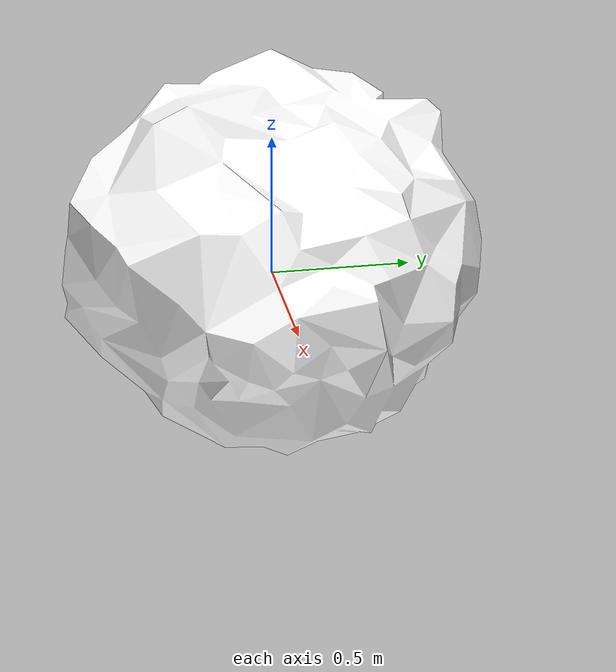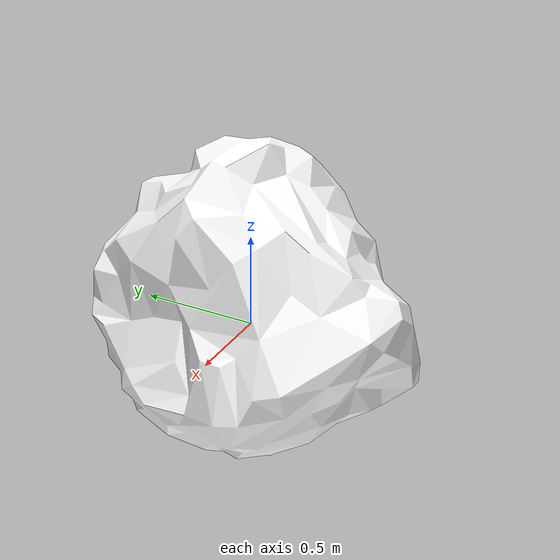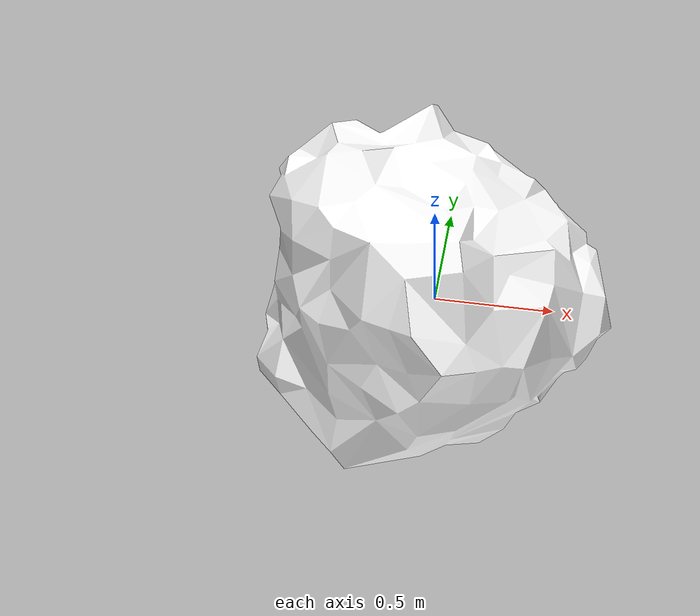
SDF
<?xml version="1.0" ?>
<sdf version="1.6">
    <model name="falling_rock">
        <link name="base_link">
            <inertial>
                <pose>-0.056101 0.007340 0.020250 0 0 0</pose>
                <mass>2569.46</mass>
                <inertia>
                    <ixx>466.314</ixx>
                    <ixy>6.554</ixy>
                    <ixz>-0.846</ixz>
                    <iyy>479.238</iyy>
                    <iyz>-5.226</iyz>
                    <izz>499.184</izz>
                </inertia>
            </inertial>
            <collision name="collision">
                <geometry>
                    <mesh>
                        <uri>model://falling_rock/meshes/FallingRock01_Collider.dae</uri>
                    </mesh>
                </geometry>
            </collision>
            <visual name="visual">
                <cast_shadows>false</cast_shadows>
                <geometry>
                    <mesh>
                        <uri>model://falling_rock/meshes/FallingRock01.dae</uri>
                    </mesh>
                </geometry>
                <material>
                    <diffuse>1.0 1.0 1.0</diffuse>
                    <specular>1.0 1.0 1.0</specular>
                    <pbr>
                        <metal>
                            <albedo_map>model://falling_rock/materials/textures/FallingRocks_Albedo.jpg</albedo_map>
                            <normal_map>model://falling_rock/materials/textures/FallingRocks_Normal.jpg</normal_map>
                            <roughness_map>model://falling_rock/materials/textures/FallingRocks_Roughness.jpg</roughness_map>
                        </metal>
                    </pbr>
                    <script>
                        <uri>model://falling_rock/materials/scripts</uri>
                        <uri>model://falling_rock/materials/textures</uri>
                        <name>FallingRocks/FallingRocks_Diffuse</name>
                    </script>
                </material>
            </visual>
        </link>
    </model>
</sdf>
